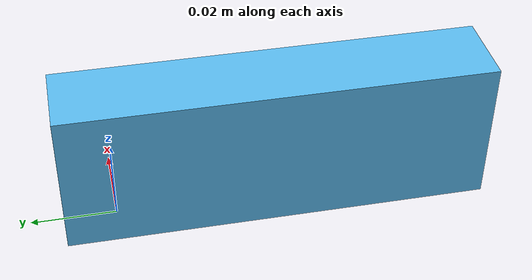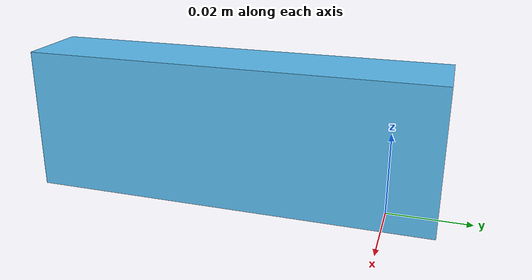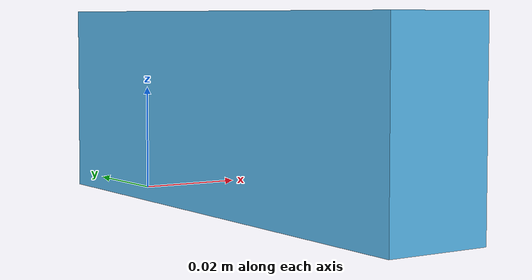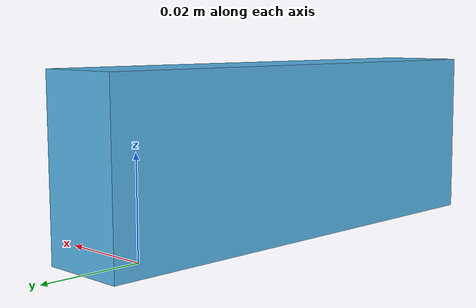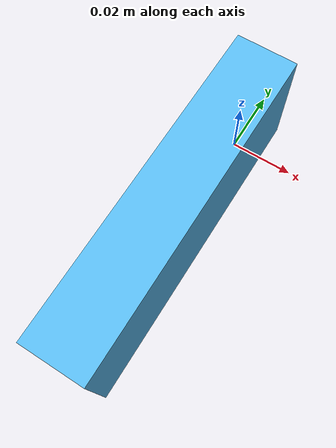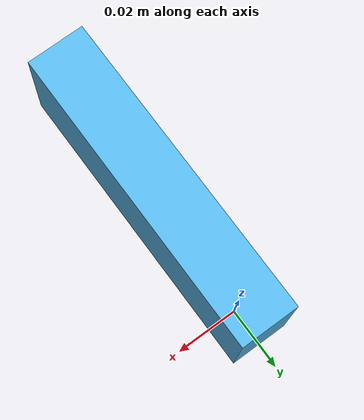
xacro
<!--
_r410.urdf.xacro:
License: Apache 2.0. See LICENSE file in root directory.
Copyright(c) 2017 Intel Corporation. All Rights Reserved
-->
<?xml version="1.0"?>
<robot name="urdf/realsense2_camera" xmlns:xacro="http://ros.org/wiki/xacro">
  <xacro:arg name="use_nominal_extrinsics" default="false"/>
  <xacro:include filename="$(find arena_simulation_setup)/entities/robots/rto/urdf/realsense2/urdf/_r410.urdf.xacro" />

  <link name="base_link" />
  <xacro:sensor_r410 parent="base_link" use_nominal_extrinsics="$(arg use_nominal_extrinsics)">
    <origin xyz="0 0 0" rpy="0 0 0"/>
  </xacro:sensor_r410>
</robot>

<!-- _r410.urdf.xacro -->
<robot name="sensor_r410" xmlns:xacro="http://ros.org/wiki/xacro">
  <!-- Includes -->
  <xacro:include filename="$(find arena_simulation_setup)/entities/robots/rto/urdf/realsense2/urdf/_materials.urdf.xacro" />

  <xacro:macro name="sensor_r410" params="parent *origin  name:=camera  use_nominal_extrinsics:=false">
    <xacro:property name="M_PI" value="3.1415926535897931" />

    <!-- The following values are approximate, and the camera node
     publishing TF values with actual calibrated camera extrinsic values -->
    <xacro:property name="r410_cam_depth_to_infra1_offset" value="-0.0275"/>
    <xacro:property name="r410_cam_depth_to_infra2_offset" value="0.0275"/>

    <!-- The following values model the aluminum peripherial case for the
      R410 camera, with the camera joint represented by the actual
      peripherial camera tripod mount -->
    <xacro:property name="r410_cam_width" value="0.099"/>
    <xacro:property name="r410_cam_height" value="0.035"/>
    <xacro:property name="r410_cam_depth" value="0.0185"/>
    <xacro:property name="r410_cam_mount_from_center_offset" value=".0375"/>

    <!-- The following offset is relative the the physical R410 camera peripherial
      camera tripod mount -->
    <xacro:property name="r410_cam_depth_px" value="0.00"/>
    <xacro:property name="r410_cam_depth_py" value="-0.0425"/>
    <xacro:property name="r410_cam_depth_pz" value="0.026"/>

    <!-- camera body, with origin at bottom screw mount -->
    <joint name="${name}_joint" type="fixed">
      <xacro:insert_block name="origin" />
      <parent link="${parent}"/>
      <child link="${name}_link" />
    </joint>

    <link name="${name}_link">
      <visual>
      <origin xyz="0 ${-r410_cam_mount_from_center_offset} ${r410_cam_height/2}" rpy="${M_PI/2} 0 ${M_PI/2}"/>
        <geometry>
          <box size="${r410_cam_width} ${r410_cam_height} ${r410_cam_depth}"/>
        </geometry>
        <material name="aluminum"/>
      </visual>
      <collision>
        <origin xyz="0.0 0.0 ${r410_cam_height/2}" rpy="0 0 0"/>
        <geometry>
        <box size="${r410_cam_depth} ${r410_cam_width} ${r410_cam_height}"/>
        </geometry>
      </collision>
      <inertial>
        <!-- The following are not reliable values, and should not be used for modeling -->
        <mass value="0.564" />
        <origin xyz="0 0 0" />
        <inertia ixx="0.003881243" ixy="0.0" ixz="0.0" iyy="0.000498940" iyz="0.0" izz="0.003879257" />
      </inertial>
    </link>

    <!-- Use the nominal extrinsics between camera frames if the calibrated extrinsics aren't being published. e.g. running the device in simulation  -->
    <xacro:if value="${use_nominal_extrinsics}">
      <!-- camera depth joints and links -->
      <joint name="${name}_depth_joint" type="fixed">
        <origin xyz="${r410_cam_depth_px} ${r410_cam_depth_py} ${r410_cam_depth_pz}" rpy="0 0 0"/>
        <parent link="${name}_link"/>
        <child link="${name}_depth_frame" />
      </joint>
      <link name="${name}_depth_frame"/>

      <joint name="${name}_depth_optical_joint" type="fixed">
        <origin xyz="0 0 0" rpy="${-M_PI/2} 0 ${-M_PI/2}" />
        <parent link="${name}_depth_frame" />
        <child link="${name}_depth_optical_frame" />
      </joint>
      <link name="${name}_depth_optical_frame"/>

      <!-- camera left IR joints and links -->
      <joint name="${name}_infra1_joint" type="fixed">
        <origin xyz="0 ${r410_cam_depth_to_infra1_offset} 0" rpy="0 0 0" />
        <parent link="${name}_depth_frame" />
        <child link="${name}_infra1_frame" />
      </joint>
      <link name="${name}_infra1_frame"/>

      <joint name="${name}_infra1_optical_joint" type="fixed">
        <origin xyz="0 0 0" rpy="${-M_PI/2} 0 ${-M_PI/2}" />
        <parent link="${name}_infra1_frame" />
        <child link="${name}_infra1_optical_frame" />
      </joint>
      <link name="${name}_infra1_optical_frame"/>

      <!-- camera right IR joints and links -->
      <joint name="${name}_infra2_joint" type="fixed">
        <origin xyz="0 ${r410_cam_depth_to_infra2_offset} 0" rpy="0 0 0" />
        <parent link="${name}_depth_frame" />
        <child link="${name}_infra2_frame" />
      </joint>
      <link name="${name}_infra2_frame"/>

      <joint name="${name}_infra2_optical_joint" type="fixed">
        <origin xyz="0 0 0" rpy="${-M_PI/2} 0 ${-M_PI/2}" />
        <parent link="${name}_infra2_frame" />
        <child link="${name}_infra2_optical_frame" />
      </joint>
      <link name="${name}_infra2_optical_frame"/>
    </xacro:if>
  </xacro:macro>
</robot>
